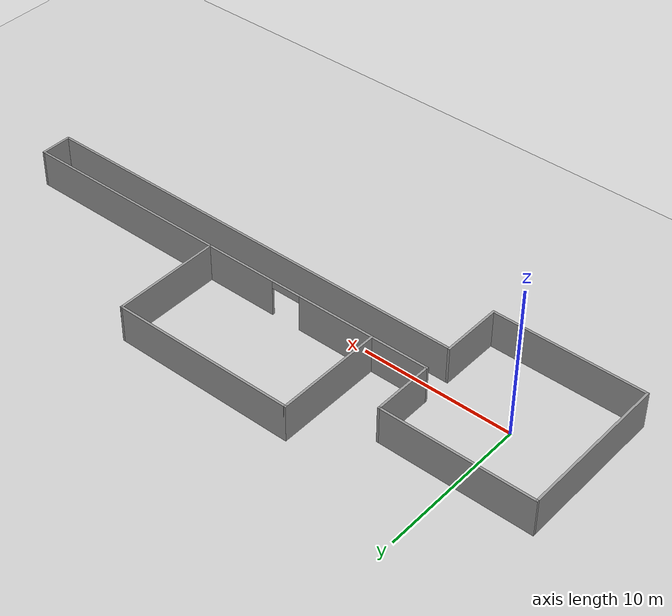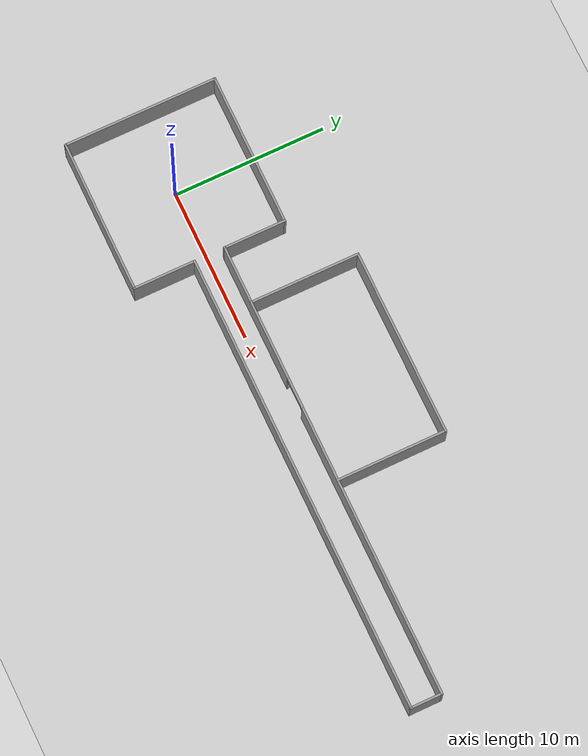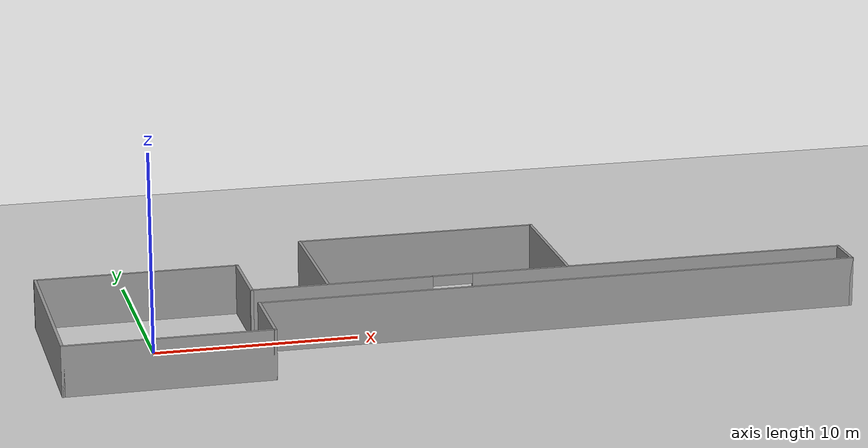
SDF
<sdf version="1.6">
 <world name="default">
  <light name="sun" type="directional">
   <pose>0 0 10 0 -0 0</pose>
   <diffuse>0.8 0.8 0.8 1</diffuse>
   <specular>0.2 0.2 0.2 1</specular>
   <attenuation>
    <range>1000</range>
    <constant>0.9</constant>
    <linear>0.01</linear>
    <quadratic>0.001</quadratic>
   </attenuation>
   <direction>-0.5 0.1 -0.9</direction>
  </light>
  <model name="ground_plane">
   <static>1</static>
   <link name="link">
    <collision name="collision">
     <geometry><plane><normal>0 0 1</normal><size>100 100</size></plane></geometry>
     <surface><friction><ode><mu>100</mu><mu2>50</mu2></ode></friction></surface>
    </collision>
    <visual name="visual">
     <cast_shadows>0</cast_shadows>
     <geometry><plane><normal>0 0 1</normal><size>100 100</size></plane></geometry>
     <material>
      <script><uri>file://media/materials/scripts/gazebo.material</uri><name>Gazebo/Grey</name></script>
     </material>
    </visual>
   </link>
  </model>
  <gravity>0 0 -9.8</gravity>
  <magnetic_field>6e-06 2.3e-05 -4.2e-05</magnetic_field>
  <atmosphere type="adiabatic"/>
  <physics name="default_physics" default="0" type="ode">
   <max_step_size>0.001</max_step_size>
   <real_time_factor>1</real_time_factor>
   <real_time_update_rate>1000</real_time_update_rate>
  </physics>
  <scene><ambient>0.4 0.4 0.4 1</ambient><background>0.7 0.7 0.7 1</background><shadows>1</shadows></scene>
  <spherical_coordinates>
   <surface_model>EARTH_WGS84</surface_model>
   <latitude_deg>0</latitude_deg>
   <longitude_deg>0</longitude_deg>
   <elevation>0</elevation>
   <heading_deg>0</heading_deg>
  </spherical_coordinates>
  <model name="door_corr2">
   <pose>15 1.55241 0 0 -0 0</pose>
   <link name="Wall_1">
    <collision name="Wall_1_Collision">
     <geometry><box><size>4.15 0.15 2.5</size></box></geometry>
     <pose>0 0 1.25 0 -0 0</pose>
    </collision>
    <visual name="Wall_1_Visual">
     <pose>0 0 1.25 0 -0 0</pose>
     <geometry><box><size>4.15 0.15 2.5</size></box></geometry>
     <material>
      <script><uri>file://media/materials/scripts/gazebo.material</uri><name>Gazebo/Grey</name></script>
      <ambient>1 1 1 1</ambient>
     </material>
     <meta><layer>0</layer></meta>
    </visual>
    <pose>-10 1.44759 0 0 -0 1.5708</pose>
   </link>
   <link name="Wall_10">
    <collision name="Wall_10_Collision">
     <geometry><box><size>7.25 0.15 2.5</size></box></geometry>
     <pose>0 0 1.25 0 -0 0</pose>
    </collision>
    <visual name="Wall_10_Visual">
     <pose>0 0 1.25 0 -0 0</pose>
     <geometry><box><size>7.25 0.15 2.5</size></box></geometry>
     <material>
      <script><uri>file://media/materials/scripts/gazebo.material</uri><name>Gazebo/Grey</name></script>
      <ambient>1 1 1 1</ambient>
     </material>
     <meta><layer>0</layer></meta>
    </visual>
    <pose>-6.22325 3.00241 0 0 -0 1.5708</pose>
   </link>
   <link name="Wall_11">
    <collision name="Wall_11_Collision">
     <geometry><box><size>12.25 0.15 2.5</size></box></geometry>
     <pose>0 0 1.25 0 -0 0</pose>
    </collision>
    <visual name="Wall_11_Visual">
     <pose>0 0 1.25 0 -0 0</pose>
     <geometry><box><size>12.25 0.15 2.5</size></box></geometry>
     <material>
      <script><uri>file://media/materials/scripts/gazebo.material</uri><name>Gazebo/Grey</name></script>
      <ambient>1 1 1 1</ambient>
     </material>
     <meta><layer>0</layer></meta>
    </visual>
    <pose>-0.173253 6.55241 0 0 -0 0</pose>
   </link>
   <link name="Wall_12">
    <collision name="Wall_12_Collision">
     <geometry><box><size>7.25 0.15 2.5</size></box></geometry>
     <pose>0 0 1.25 0 -0 0</pose>
    </collision>
    <visual name="Wall_12_Visual">
     <pose>0 0 1.25 0 -0 0</pose>
     <geometry><box><size>7.25 0.15 2.5</size></box></geometry>
     <material>
      <script><uri>file://media/materials/scripts/gazebo.material</uri><name>Gazebo/Grey</name></script>
      <ambient>1 1 1 1</ambient>
     </material>
     <meta><layer>0</layer></meta>
    </visual>
    <pose>5.87675 3.00241 0 0 0 -1.5708</pose>
   </link>
   <link name="Wall_2">
    <collision name="Wall_2_Collision">
     <geometry><box><size>10.15 0.15 2.5</size></box></geometry>
     <pose>0 0 1.25 0 -0 0</pose>
    </collision>
    <visual name="Wall_2_Visual">
     <pose>0 0 1.25 0 -0 0</pose>
     <geometry><box><size>10.15 0.15 2.5</size></box></geometry>
     <material>
      <script><uri>file://media/materials/scripts/gazebo.material</uri><name>Gazebo/Grey</name></script>
      <ambient>1 1 1 1</ambient>
     </material>
     <meta><layer>0</layer></meta>
    </visual>
    <pose>-15 3.44759 0 0 -0 3.14159</pose>
   </link>
   <link name="Wall_3">
    <collision name="Wall_3_Collision">
     <geometry><box><size>10.15 0.15 2.5</size></box></geometry>
     <pose>0 0 1.25 0 -0 0</pose>
    </collision>
    <visual name="Wall_3_Visual">
     <pose>0 0 1.25 0 -0 0</pose>
     <geometry><box><size>10.15 0.15 2.5</size></box></geometry>
     <material>
      <script><uri>file://media/materials/scripts/gazebo.material</uri><name>Gazebo/Grey</name></script>
      <ambient>1 1 1 1</ambient>
     </material>
     <meta><layer>0</layer></meta>
    </visual>
    <pose>-20 -1.55241 0 0 0 -1.5708</pose>
   </link>
   <link name="Wall_4">
    <collision name="Wall_4_Collision">
     <geometry><box><size>10.15 0.15 2.5</size></box></geometry>
     <pose>0 0 1.25 0 -0 0</pose>
    </collision>
    <visual name="Wall_4_Visual">
     <pose>0 0 1.25 0 -0 0</pose>
     <geometry><box><size>10.15 0.15 2.5</size></box></geometry>
     <material>
      <script><uri>file://media/materials/scripts/gazebo.material</uri><name>Gazebo/Grey</name></script>
      <ambient>1 1 1 1</ambient>
     </material>
     <meta><layer>0</layer></meta>
    </visual>
    <pose>-15 -6.55241 0 0 -0 0</pose>
   </link>
   <link name="Wall_5">
    <collision name="Wall_5_Collision">
     <geometry><box><size>4.15 0.15 2.5</size></box></geometry>
     <pose>0 0 1.25 0 -0 0</pose>
    </collision>
    <visual name="Wall_5_Visual">
     <pose>0 0 1.25 0 -0 0</pose>
     <geometry><box><size>4.15 0.15 2.5</size></box></geometry>
     <material>
      <script><uri>file://media/materials/scripts/gazebo.material</uri><name>Gazebo/Grey</name></script>
      <ambient>1 1 1 1</ambient>
     </material>
     <meta><layer>0</layer></meta>
    </visual>
    <pose>-10 -4.55241 0 0 -0 1.5708</pose>
   </link>
   <link name="Wall_6">
    <collision name="Wall_6_Collision">
     <geometry><box><size>30.15 0.15 2.5</size></box></geometry>
     <pose>0 0 1.25 0 -0 0</pose>
    </collision>
    <visual name="Wall_6_Visual">
     <pose>0 0 1.25 0 -0 0</pose>
     <geometry><box><size>30.15 0.15 2.5</size></box></geometry>
     <material>
      <script><uri>file://media/materials/scripts/gazebo.material</uri><name>Gazebo/Grey</name></script>
      <ambient>1 1 1 1</ambient>
     </material>
     <meta><layer>0</layer></meta>
    </visual>
    <pose>5 -2.55241 0 0 -0 0</pose>
   </link>
   <link name="Wall_7">
    <collision name="Wall_7_Collision">
     <geometry><box><size>2.15 0.15 2.5</size></box></geometry>
     <pose>0 0 1.25 0 -0 0</pose>
    </collision>
    <visual name="Wall_7_Visual">
     <pose>0 0 1.25 0 -0 0</pose>
     <geometry><box><size>2.15 0.15 2.5</size></box></geometry>
     <material>
      <script><uri>file://media/materials/scripts/gazebo.material</uri><name>Gazebo/Grey</name></script>
      <ambient>1 1 1 1</ambient>
     </material>
     <meta><layer>0</layer></meta>
    </visual>
    <pose>20 -1.55241 0 0 -0 1.5708</pose>
   </link>
   <link name="Wall_8">
    <pose>5 -0.552411 0 0 -0 3.14159</pose>
    <visual name="Wall_8_Visual_0">
     <pose>-5.5375 0 1.25 0 -0 0</pose>
     <geometry><box><size>19.075 0.15 2.5</size></box></geometry>
     <material>
      <script><uri>file://media/materials/scripts/gazebo.material</uri><name>Gazebo/Grey</name></script>
      <ambient>1 1 1 1</ambient>
     </material>
     <meta><layer>0</layer></meta>
    </visual>
    <collision name="Wall_8_Collision_0">
     <geometry><box><size>19.075 0.15 2.5</size></box></geometry>
     <pose>-5.5375 0 1.25 0 -0 0</pose>
    </collision>
    <visual name="Wall_8_Visual_1">
     <pose>10.5375 0 1.25 0 -0 0</pose>
     <geometry><box><size>9.075 0.15 2.5</size></box></geometry>
     <material>
      <script><uri>file://media/materials/scripts/gazebo.material</uri><name>Gazebo/Grey</name></script>
      <ambient>1 1 1 1</ambient>
     </material>
     <meta><layer>0</layer></meta>
    </visual>
    <collision name="Wall_8_Collision_1">
     <geometry><box><size>9.075 0.15 2.5</size></box></geometry>
     <pose>10.5375 0 1.25 0 -0 0</pose>
    </collision>
    <visual name="Wall_8_Visual_2">
     <pose>5 0 2.25 0 -0 0</pose>
     <geometry><box><size>2 0.15 0.5</size></box></geometry>
     <material>
      <script><uri>file://media/materials/scripts/gazebo.material</uri><name>Gazebo/Grey</name></script>
      <ambient>1 1 1 1</ambient>
     </material>
     <meta><layer>0</layer></meta>
    </visual>
    <collision name="Wall_8_Collision_2">
     <geometry><box><size>2 0.15 0.5</size></box></geometry>
     <pose>5 0 2.25 0 -0 0</pose>
    </collision>
   </link>
   <static>1</static>
  </model>
 </world>
</sdf>
